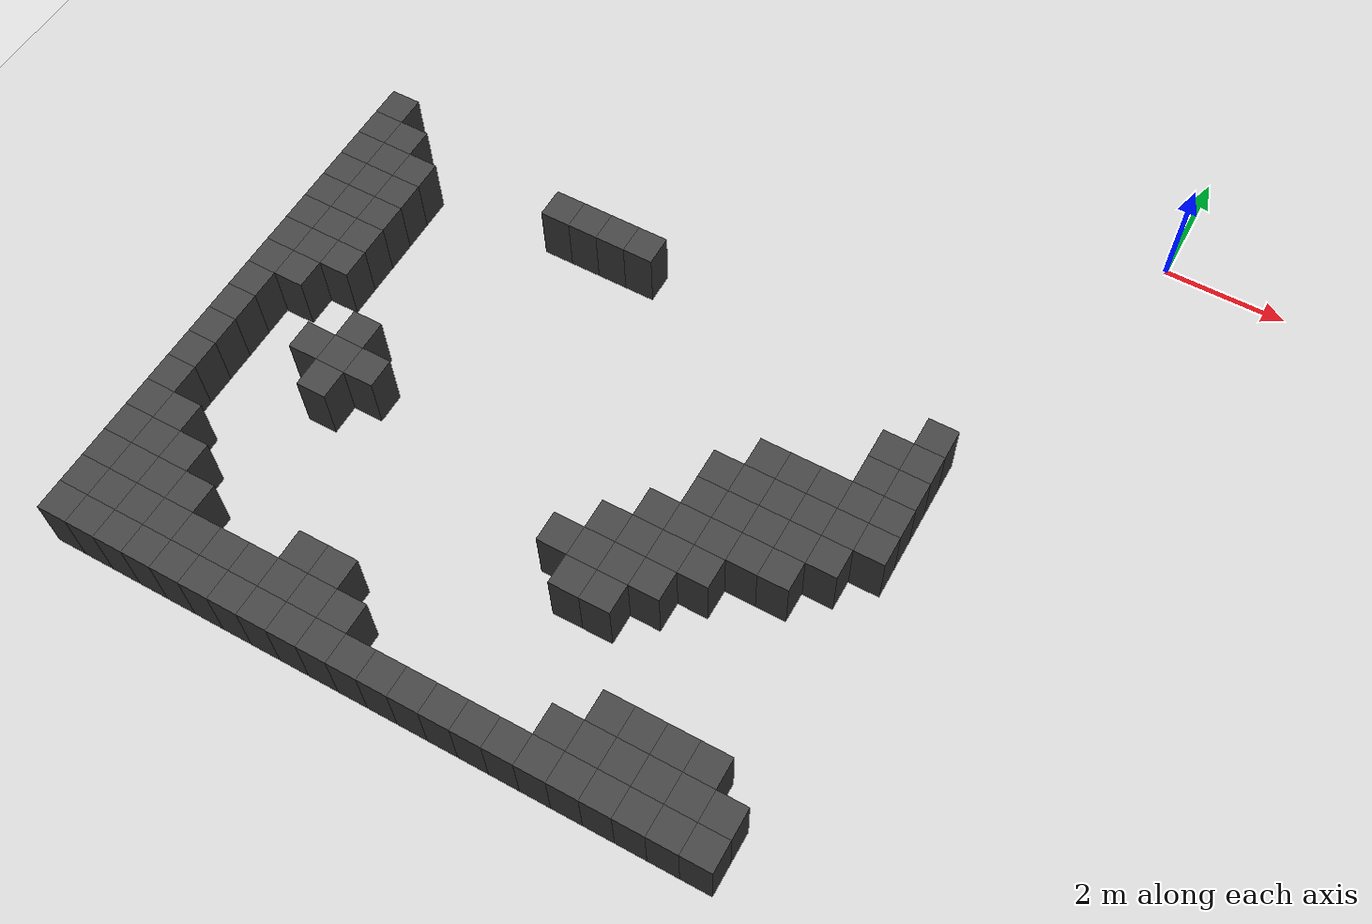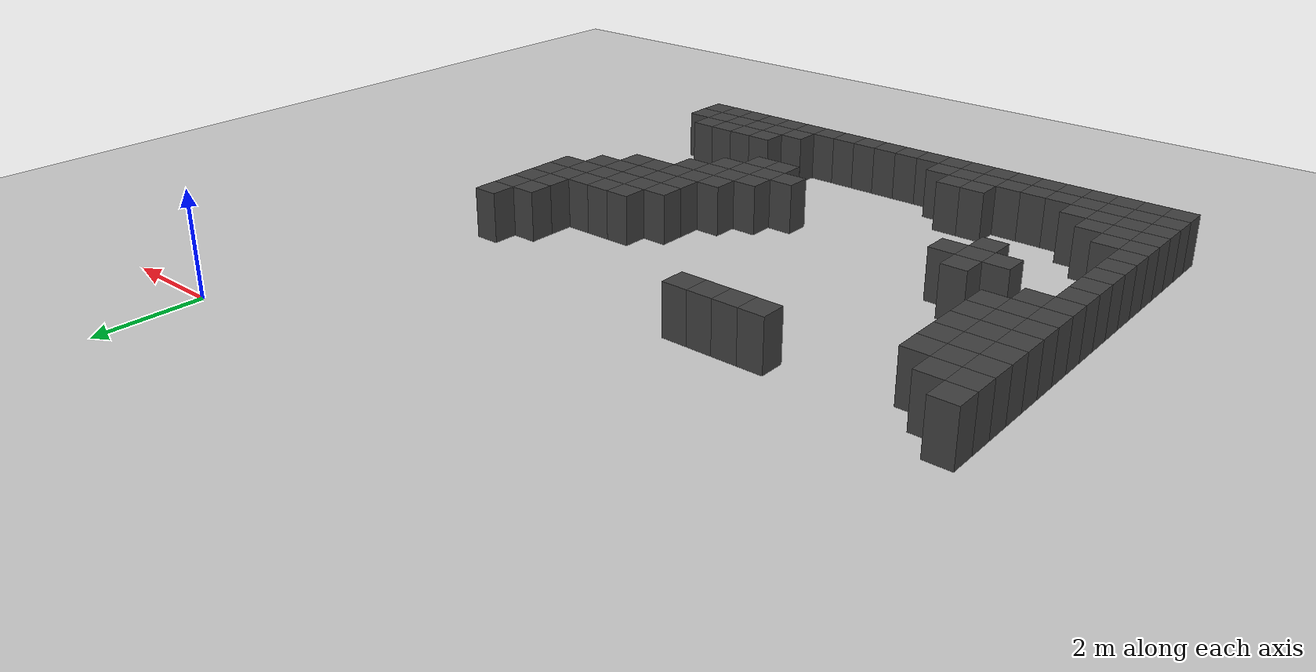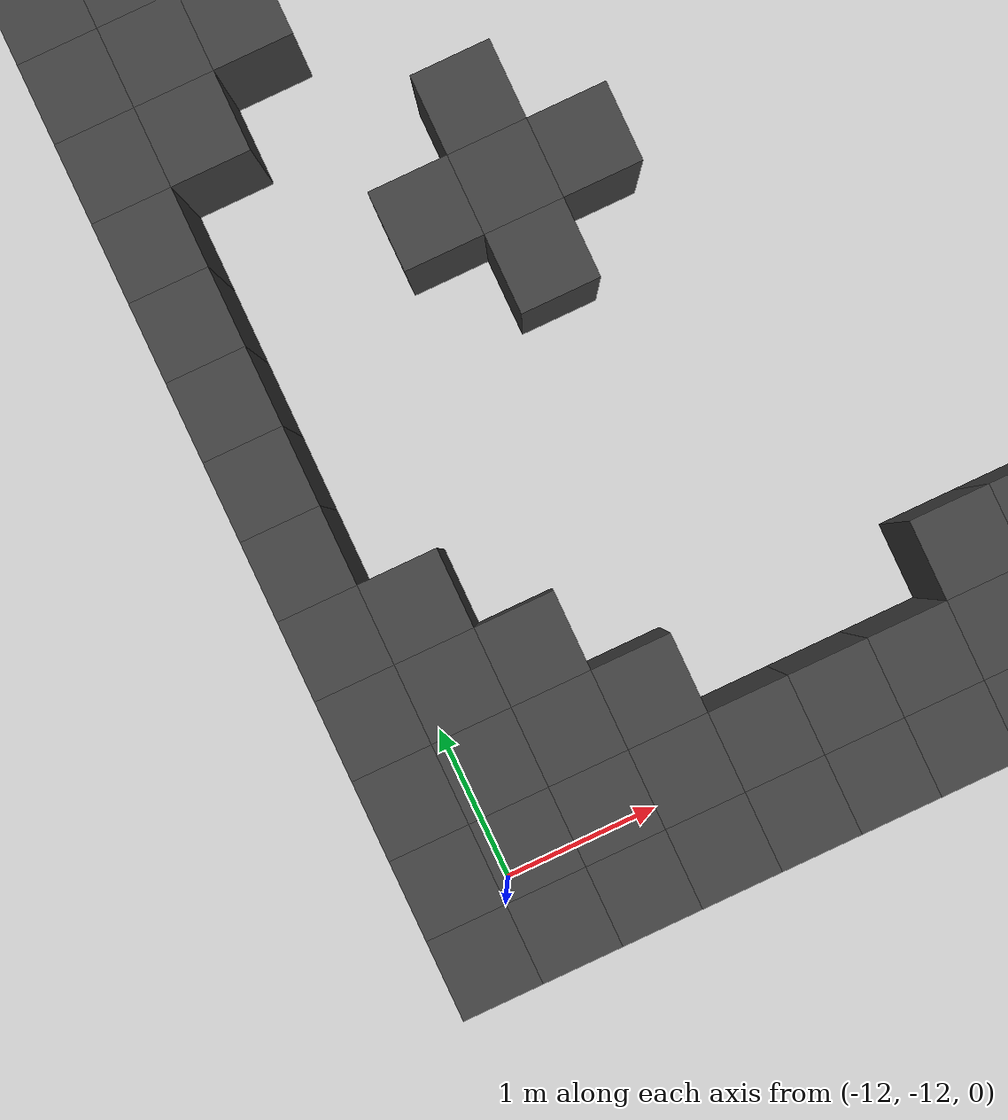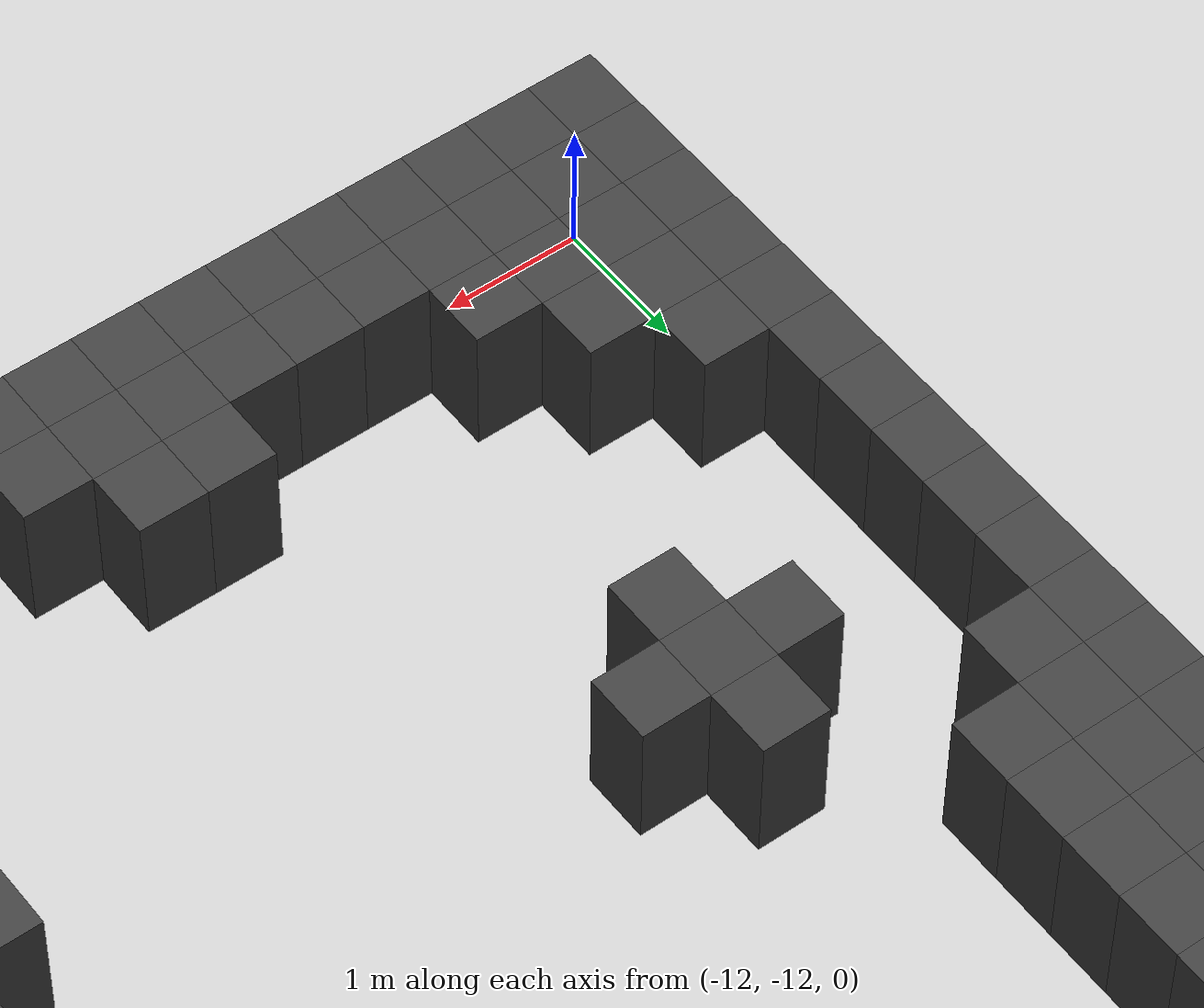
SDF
<sdf version="1.7">
 <world name="map_7972">
  <model name="ground_plane">
   <static>true</static>
   <link name="link">
    <collision name="collision">
     <geometry><plane><normal>0 0 1</normal><size>200 200</size></plane></geometry>
    </collision>
    <visual name="visual">
     <geometry><plane><normal>0 0 1</normal><size>200 200</size></plane></geometry>
     <material><ambient>0.8 0.8 0.8 1</ambient><diffuse>0.8 0.8 0.8 1</diffuse></material>
    </visual>
   </link>
  </model>
  <model name="maze_environment">
   <static>true</static>
   <link name="wall_590">
    <pose>-12.250 -3.750 0.500 0 0 0</pose>
    <collision name="col"><geometry><box><size>0.5 0.5 1.0</size></box></geometry></collision>
    <visual name="vis">
     <geometry><box><size>0.5 0.5 1.0</size></box></geometry>
     <material><ambient>0.15 0.15 0.15 1</ambient><diffuse>0.25 0.25 0.25 1</diffuse></material>
    </visual>
   </link>
   <link name="wall_609">
    <pose>-12.250 -4.250 0.500 0 0 0</pose>
    <collision name="col"><geometry><box><size>0.5 0.5 1.0</size></box></geometry></collision>
    <visual name="vis">
     <geometry><box><size>0.5 0.5 1.0</size></box></geometry>
     <material><ambient>0.15 0.15 0.15 1</ambient><diffuse>0.25 0.25 0.25 1</diffuse></material>
    </visual>
   </link>
   <link name="wall_610">
    <pose>-11.750 -4.250 0.500 0 0 0</pose>
    <collision name="col"><geometry><box><size>0.5 0.5 1.0</size></box></geometry></collision>
    <visual name="vis">
     <geometry><box><size>0.5 0.5 1.0</size></box></geometry>
     <material><ambient>0.15 0.15 0.15 1</ambient><diffuse>0.25 0.25 0.25 1</diffuse></material>
    </visual>
   </link>
   <link name="wall_611">
    <pose>-8.750 -4.250 0.500 0 0 0</pose>
    <collision name="col"><geometry><box><size>0.5 0.5 1.0</size></box></geometry></collision>
    <visual name="vis">
     <geometry><box><size>0.5 0.5 1.0</size></box></geometry>
     <material><ambient>0.15 0.15 0.15 1</ambient><diffuse>0.25 0.25 0.25 1</diffuse></material>
    </visual>
   </link>
   <link name="wall_612">
    <pose>-8.250 -4.250 0.500 0 0 0</pose>
    <collision name="col"><geometry><box><size>0.5 0.5 1.0</size></box></geometry></collision>
    <visual name="vis">
     <geometry><box><size>0.5 0.5 1.0</size></box></geometry>
     <material><ambient>0.15 0.15 0.15 1</ambient><diffuse>0.25 0.25 0.25 1</diffuse></material>
    </visual>
   </link>
   <link name="wall_613">
    <pose>-7.750 -4.250 0.500 0 0 0</pose>
    <collision name="col"><geometry><box><size>0.5 0.5 1.0</size></box></geometry></collision>
    <visual name="vis">
     <geometry><box><size>0.5 0.5 1.0</size></box></geometry>
     <material><ambient>0.15 0.15 0.15 1</ambient><diffuse>0.25 0.25 0.25 1</diffuse></material>
    </visual>
   </link>
   <link name="wall_614">
    <pose>-7.250 -4.250 0.500 0 0 0</pose>
    <collision name="col"><geometry><box><size>0.5 0.5 1.0</size></box></geometry></collision>
    <visual name="vis">
     <geometry><box><size>0.5 0.5 1.0</size></box></geometry>
     <material><ambient>0.15 0.15 0.15 1</ambient><diffuse>0.25 0.25 0.25 1</diffuse></material>
    </visual>
   </link>
   <link name="wall_624">
    <pose>-12.250 -4.750 0.500 0 0 0</pose>
    <collision name="col"><geometry><box><size>0.5 0.5 1.0</size></box></geometry></collision>
    <visual name="vis">
     <geometry><box><size>0.5 0.5 1.0</size></box></geometry>
     <material><ambient>0.15 0.15 0.15 1</ambient><diffuse>0.25 0.25 0.25 1</diffuse></material>
    </visual>
   </link>
   <link name="wall_625">
    <pose>-11.750 -4.750 0.500 0 0 0</pose>
    <collision name="col"><geometry><box><size>0.5 0.5 1.0</size></box></geometry></collision>
    <visual name="vis">
     <geometry><box><size>0.5 0.5 1.0</size></box></geometry>
     <material><ambient>0.15 0.15 0.15 1</ambient><diffuse>0.25 0.25 0.25 1</diffuse></material>
    </visual>
   </link>
   <link name="wall_626">
    <pose>-11.250 -4.750 0.500 0 0 0</pose>
    <collision name="col"><geometry><box><size>0.5 0.5 1.0</size></box></geometry></collision>
    <visual name="vis">
     <geometry><box><size>0.5 0.5 1.0</size></box></geometry>
     <material><ambient>0.15 0.15 0.15 1</ambient><diffuse>0.25 0.25 0.25 1</diffuse></material>
    </visual>
   </link>
   <link name="wall_639">
    <pose>-12.250 -5.250 0.500 0 0 0</pose>
    <collision name="col"><geometry><box><size>0.5 0.5 1.0</size></box></geometry></collision>
    <visual name="vis">
     <geometry><box><size>0.5 0.5 1.0</size></box></geometry>
     <material><ambient>0.15 0.15 0.15 1</ambient><diffuse>0.25 0.25 0.25 1</diffuse></material>
    </visual>
   </link>
   <link name="wall_640">
    <pose>-11.750 -5.250 0.500 0 0 0</pose>
    <collision name="col"><geometry><box><size>0.5 0.5 1.0</size></box></geometry></collision>
    <visual name="vis">
     <geometry><box><size>0.5 0.5 1.0</size></box></geometry>
     <material><ambient>0.15 0.15 0.15 1</ambient><diffuse>0.25 0.25 0.25 1</diffuse></material>
    </visual>
   </link>
   <link name="wall_641">
    <pose>-11.250 -5.250 0.500 0 0 0</pose>
    <collision name="col"><geometry><box><size>0.5 0.5 1.0</size></box></geometry></collision>
    <visual name="vis">
     <geometry><box><size>0.5 0.5 1.0</size></box></geometry>
     <material><ambient>0.15 0.15 0.15 1</ambient><diffuse>0.25 0.25 0.25 1</diffuse></material>
    </visual>
   </link>
   <link name="wall_642">
    <pose>-1.750 -5.250 0.500 0 0 0</pose>
    <collision name="col"><geometry><box><size>0.5 0.5 1.0</size></box></geometry></collision>
    <visual name="vis">
     <geometry><box><size>0.5 0.5 1.0</size></box></geometry>
     <material><ambient>0.15 0.15 0.15 1</ambient><diffuse>0.25 0.25 0.25 1</diffuse></material>
    </visual>
   </link>
   <link name="wall_658">
    <pose>-12.250 -5.750 0.500 0 0 0</pose>
    <collision name="col"><geometry><box><size>0.5 0.5 1.0</size></box></geometry></collision>
    <visual name="vis">
     <geometry><box><size>0.5 0.5 1.0</size></box></geometry>
     <material><ambient>0.15 0.15 0.15 1</ambient><diffuse>0.25 0.25 0.25 1</diffuse></material>
    </visual>
   </link>
   <link name="wall_659">
    <pose>-11.750 -5.750 0.500 0 0 0</pose>
    <collision name="col"><geometry><box><size>0.5 0.5 1.0</size></box></geometry></collision>
    <visual name="vis">
     <geometry><box><size>0.5 0.5 1.0</size></box></geometry>
     <material><ambient>0.15 0.15 0.15 1</ambient><diffuse>0.25 0.25 0.25 1</diffuse></material>
    </visual>
   </link>
   <link name="wall_660">
    <pose>-11.250 -5.750 0.500 0 0 0</pose>
    <collision name="col"><geometry><box><size>0.5 0.5 1.0</size></box></geometry></collision>
    <visual name="vis">
     <geometry><box><size>0.5 0.5 1.0</size></box></geometry>
     <material><ambient>0.15 0.15 0.15 1</ambient><diffuse>0.25 0.25 0.25 1</diffuse></material>
    </visual>
   </link>
   <link name="wall_661">
    <pose>-2.250 -5.750 0.500 0 0 0</pose>
    <collision name="col"><geometry><box><size>0.5 0.5 1.0</size></box></geometry></collision>
    <visual name="vis">
     <geometry><box><size>0.5 0.5 1.0</size></box></geometry>
     <material><ambient>0.15 0.15 0.15 1</ambient><diffuse>0.25 0.25 0.25 1</diffuse></material>
    </visual>
   </link>
   <link name="wall_662">
    <pose>-1.750 -5.750 0.500 0 0 0</pose>
    <collision name="col"><geometry><box><size>0.5 0.5 1.0</size></box></geometry></collision>
    <visual name="vis">
     <geometry><box><size>0.5 0.5 1.0</size></box></geometry>
     <material><ambient>0.15 0.15 0.15 1</ambient><diffuse>0.25 0.25 0.25 1</diffuse></material>
    </visual>
   </link>
   <link name="wall_677">
    <pose>-12.250 -6.250 0.500 0 0 0</pose>
    <collision name="col"><geometry><box><size>0.5 0.5 1.0</size></box></geometry></collision>
    <visual name="vis">
     <geometry><box><size>0.5 0.5 1.0</size></box></geometry>
     <material><ambient>0.15 0.15 0.15 1</ambient><diffuse>0.25 0.25 0.25 1</diffuse></material>
    </visual>
   </link>
   <link name="wall_678">
    <pose>-11.750 -6.250 0.500 0 0 0</pose>
    <collision name="col"><geometry><box><size>0.5 0.5 1.0</size></box></geometry></collision>
    <visual name="vis">
     <geometry><box><size>0.5 0.5 1.0</size></box></geometry>
     <material><ambient>0.15 0.15 0.15 1</ambient><diffuse>0.25 0.25 0.25 1</diffuse></material>
    </visual>
   </link>
   <link name="wall_679">
    <pose>-11.250 -6.250 0.500 0 0 0</pose>
    <collision name="col"><geometry><box><size>0.5 0.5 1.0</size></box></geometry></collision>
    <visual name="vis">
     <geometry><box><size>0.5 0.5 1.0</size></box></geometry>
     <material><ambient>0.15 0.15 0.15 1</ambient><diffuse>0.25 0.25 0.25 1</diffuse></material>
    </visual>
   </link>
   <link name="wall_680">
    <pose>-2.250 -6.250 0.500 0 0 0</pose>
    <collision name="col"><geometry><box><size>0.5 0.5 1.0</size></box></geometry></collision>
    <visual name="vis">
     <geometry><box><size>0.5 0.5 1.0</size></box></geometry>
     <material><ambient>0.15 0.15 0.15 1</ambient><diffuse>0.25 0.25 0.25 1</diffuse></material>
    </visual>
   </link>
   <link name="wall_681">
    <pose>-1.750 -6.250 0.500 0 0 0</pose>
    <collision name="col"><geometry><box><size>0.5 0.5 1.0</size></box></geometry></collision>
    <visual name="vis">
     <geometry><box><size>0.5 0.5 1.0</size></box></geometry>
     <material><ambient>0.15 0.15 0.15 1</ambient><diffuse>0.25 0.25 0.25 1</diffuse></material>
    </visual>
   </link>
   <link name="wall_695">
    <pose>-12.250 -6.750 0.500 0 0 0</pose>
    <collision name="col"><geometry><box><size>0.5 0.5 1.0</size></box></geometry></collision>
    <visual name="vis">
     <geometry><box><size>0.5 0.5 1.0</size></box></geometry>
     <material><ambient>0.15 0.15 0.15 1</ambient><diffuse>0.25 0.25 0.25 1</diffuse></material>
    </visual>
   </link>
   <link name="wall_696">
    <pose>-11.750 -6.750 0.500 0 0 0</pose>
    <collision name="col"><geometry><box><size>0.5 0.5 1.0</size></box></geometry></collision>
    <visual name="vis">
     <geometry><box><size>0.5 0.5 1.0</size></box></geometry>
     <material><ambient>0.15 0.15 0.15 1</ambient><diffuse>0.25 0.25 0.25 1</diffuse></material>
    </visual>
   </link>
   <link name="wall_697">
    <pose>-11.250 -6.750 0.500 0 0 0</pose>
    <collision name="col"><geometry><box><size>0.5 0.5 1.0</size></box></geometry></collision>
    <visual name="vis">
     <geometry><box><size>0.5 0.5 1.0</size></box></geometry>
     <material><ambient>0.15 0.15 0.15 1</ambient><diffuse>0.25 0.25 0.25 1</diffuse></material>
    </visual>
   </link>
   <link name="wall_698">
    <pose>-3.750 -6.750 0.500 0 0 0</pose>
    <collision name="col"><geometry><box><size>0.5 0.5 1.0</size></box></geometry></collision>
    <visual name="vis">
     <geometry><box><size>0.5 0.5 1.0</size></box></geometry>
     <material><ambient>0.15 0.15 0.15 1</ambient><diffuse>0.25 0.25 0.25 1</diffuse></material>
    </visual>
   </link>
   <link name="wall_699">
    <pose>-3.250 -6.750 0.500 0 0 0</pose>
    <collision name="col"><geometry><box><size>0.5 0.5 1.0</size></box></geometry></collision>
    <visual name="vis">
     <geometry><box><size>0.5 0.5 1.0</size></box></geometry>
     <material><ambient>0.15 0.15 0.15 1</ambient><diffuse>0.25 0.25 0.25 1</diffuse></material>
    </visual>
   </link>
   <link name="wall_700">
    <pose>-2.750 -6.750 0.500 0 0 0</pose>
    <collision name="col"><geometry><box><size>0.5 0.5 1.0</size></box></geometry></collision>
    <visual name="vis">
     <geometry><box><size>0.5 0.5 1.0</size></box></geometry>
     <material><ambient>0.15 0.15 0.15 1</ambient><diffuse>0.25 0.25 0.25 1</diffuse></material>
    </visual>
   </link>
   <link name="wall_701">
    <pose>-2.250 -6.750 0.500 0 0 0</pose>
    <collision name="col"><geometry><box><size>0.5 0.5 1.0</size></box></geometry></collision>
    <visual name="vis">
     <geometry><box><size>0.5 0.5 1.0</size></box></geometry>
     <material><ambient>0.15 0.15 0.15 1</ambient><diffuse>0.25 0.25 0.25 1</diffuse></material>
    </visual>
   </link>
   <link name="wall_702">
    <pose>-1.750 -6.750 0.500 0 0 0</pose>
    <collision name="col"><geometry><box><size>0.5 0.5 1.0</size></box></geometry></collision>
    <visual name="vis">
     <geometry><box><size>0.5 0.5 1.0</size></box></geometry>
     <material><ambient>0.15 0.15 0.15 1</ambient><diffuse>0.25 0.25 0.25 1</diffuse></material>
    </visual>
   </link>
   <link name="wall_713">
    <pose>-12.250 -7.250 0.500 0 0 0</pose>
    <collision name="col"><geometry><box><size>0.5 0.5 1.0</size></box></geometry></collision>
    <visual name="vis">
     <geometry><box><size>0.5 0.5 1.0</size></box></geometry>
     <material><ambient>0.15 0.15 0.15 1</ambient><diffuse>0.25 0.25 0.25 1</diffuse></material>
    </visual>
   </link>
   <link name="wall_714">
    <pose>-11.750 -7.250 0.500 0 0 0</pose>
    <collision name="col"><geometry><box><size>0.5 0.5 1.0</size></box></geometry></collision>
    <visual name="vis">
     <geometry><box><size>0.5 0.5 1.0</size></box></geometry>
     <material><ambient>0.15 0.15 0.15 1</ambient><diffuse>0.25 0.25 0.25 1</diffuse></material>
    </visual>
   </link>
   <link name="wall_715">
    <pose>-4.250 -7.250 0.500 0 0 0</pose>
    <collision name="col"><geometry><box><size>0.5 0.5 1.0</size></box></geometry></collision>
    <visual name="vis">
     <geometry><box><size>0.5 0.5 1.0</size></box></geometry>
     <material><ambient>0.15 0.15 0.15 1</ambient><diffuse>0.25 0.25 0.25 1</diffuse></material>
    </visual>
   </link>
   <link name="wall_716">
    <pose>-3.750 -7.250 0.500 0 0 0</pose>
    <collision name="col"><geometry><box><size>0.5 0.5 1.0</size></box></geometry></collision>
    <visual name="vis">
     <geometry><box><size>0.5 0.5 1.0</size></box></geometry>
     <material><ambient>0.15 0.15 0.15 1</ambient><diffuse>0.25 0.25 0.25 1</diffuse></material>
    </visual>
   </link>
   <link name="wall_717">
    <pose>-3.250 -7.250 0.500 0 0 0</pose>
    <collision name="col"><geometry><box><size>0.5 0.5 1.0</size></box></geometry></collision>
    <visual name="vis">
     <geometry><box><size>0.5 0.5 1.0</size></box></geometry>
     <material><ambient>0.15 0.15 0.15 1</ambient><diffuse>0.25 0.25 0.25 1</diffuse></material>
    </visual>
   </link>
   <link name="wall_718">
    <pose>-2.750 -7.250 0.500 0 0 0</pose>
    <collision name="col"><geometry><box><size>0.5 0.5 1.0</size></box></geometry></collision>
    <visual name="vis">
     <geometry><box><size>0.5 0.5 1.0</size></box></geometry>
     <material><ambient>0.15 0.15 0.15 1</ambient><diffuse>0.25 0.25 0.25 1</diffuse></material>
    </visual>
   </link>
   <link name="wall_719">
    <pose>-2.250 -7.250 0.500 0 0 0</pose>
    <collision name="col"><geometry><box><size>0.5 0.5 1.0</size></box></geometry></collision>
    <visual name="vis">
     <geometry><box><size>0.5 0.5 1.0</size></box></geometry>
     <material><ambient>0.15 0.15 0.15 1</ambient><diffuse>0.25 0.25 0.25 1</diffuse></material>
    </visual>
   </link>
   <link name="wall_720">
    <pose>-1.750 -7.250 0.500 0 0 0</pose>
    <collision name="col"><geometry><box><size>0.5 0.5 1.0</size></box></geometry></collision>
    <visual name="vis">
     <geometry><box><size>0.5 0.5 1.0</size></box></geometry>
     <material><ambient>0.15 0.15 0.15 1</ambient><diffuse>0.25 0.25 0.25 1</diffuse></material>
    </visual>
   </link>
   <link name="wall_726">
    <pose>-12.250 -7.750 0.500 0 0 0</pose>
    <collision name="col"><geometry><box><size>0.5 0.5 1.0</size></box></geometry></collision>
    <visual name="vis">
     <geometry><box><size>0.5 0.5 1.0</size></box></geometry>
     <material><ambient>0.15 0.15 0.15 1</ambient><diffuse>0.25 0.25 0.25 1</diffuse></material>
    </visual>
   </link>
   <link name="wall_727">
    <pose>-10.250 -7.750 0.500 0 0 0</pose>
    <collision name="col"><geometry><box><size>0.5 0.5 1.0</size></box></geometry></collision>
    <visual name="vis">
     <geometry><box><size>0.5 0.5 1.0</size></box></geometry>
     <material><ambient>0.15 0.15 0.15 1</ambient><diffuse>0.25 0.25 0.25 1</diffuse></material>
    </visual>
   </link>
   <link name="wall_728">
    <pose>-4.250 -7.750 0.500 0 0 0</pose>
    <collision name="col"><geometry><box><size>0.5 0.5 1.0</size></box></geometry></collision>
    <visual name="vis">
     <geometry><box><size>0.5 0.5 1.0</size></box></geometry>
     <material><ambient>0.15 0.15 0.15 1</ambient><diffuse>0.25 0.25 0.25 1</diffuse></material>
    </visual>
   </link>
   <link name="wall_729">
    <pose>-3.750 -7.750 0.500 0 0 0</pose>
    <collision name="col"><geometry><box><size>0.5 0.5 1.0</size></box></geometry></collision>
    <visual name="vis">
     <geometry><box><size>0.5 0.5 1.0</size></box></geometry>
     <material><ambient>0.15 0.15 0.15 1</ambient><diffuse>0.25 0.25 0.25 1</diffuse></material>
    </visual>
   </link>
   <link name="wall_730">
    <pose>-3.250 -7.750 0.500 0 0 0</pose>
    <collision name="col"><geometry><box><size>0.5 0.5 1.0</size></box></geometry></collision>
    <visual name="vis">
     <geometry><box><size>0.5 0.5 1.0</size></box></geometry>
     <material><ambient>0.15 0.15 0.15 1</ambient><diffuse>0.25 0.25 0.25 1</diffuse></material>
    </visual>
   </link>
   <link name="wall_731">
    <pose>-2.750 -7.750 0.500 0 0 0</pose>
    <collision name="col"><geometry><box><size>0.5 0.5 1.0</size></box></geometry></collision>
    <visual name="vis">
     <geometry><box><size>0.5 0.5 1.0</size></box></geometry>
     <material><ambient>0.15 0.15 0.15 1</ambient><diffuse>0.25 0.25 0.25 1</diffuse></material>
    </visual>
   </link>
   <link name="wall_732">
    <pose>-2.250 -7.750 0.500 0 0 0</pose>
    <collision name="col"><geometry><box><size>0.5 0.5 1.0</size></box></geometry></collision>
    <visual name="vis">
     <geometry><box><size>0.5 0.5 1.0</size></box></geometry>
     <material><ambient>0.15 0.15 0.15 1</ambient><diffuse>0.25 0.25 0.25 1</diffuse></material>
    </visual>
   </link>
   <link name="wall_736">
    <pose>-12.250 -8.250 0.500 0 0 0</pose>
    <collision name="col"><geometry><box><size>0.5 0.5 1.0</size></box></geometry></collision>
    <visual name="vis">
     <geometry><box><size>0.5 0.5 1.0</size></box></geometry>
     <material><ambient>0.15 0.15 0.15 1</ambient><diffuse>0.25 0.25 0.25 1</diffuse></material>
    </visual>
   </link>
   <link name="wall_737">
    <pose>-10.750 -8.250 0.500 0 0 0</pose>
    <collision name="col"><geometry><box><size>0.5 0.5 1.0</size></box></geometry></collision>
    <visual name="vis">
     <geometry><box><size>0.5 0.5 1.0</size></box></geometry>
     <material><ambient>0.15 0.15 0.15 1</ambient><diffuse>0.25 0.25 0.25 1</diffuse></material>
    </visual>
   </link>
   <link name="wall_738">
    <pose>-10.250 -8.250 0.500 0 0 0</pose>
    <collision name="col"><geometry><box><size>0.5 0.5 1.0</size></box></geometry></collision>
    <visual name="vis">
     <geometry><box><size>0.5 0.5 1.0</size></box></geometry>
     <material><ambient>0.15 0.15 0.15 1</ambient><diffuse>0.25 0.25 0.25 1</diffuse></material>
    </visual>
   </link>
   <link name="wall_739">
    <pose>-9.750 -8.250 0.500 0 0 0</pose>
    <collision name="col"><geometry><box><size>0.5 0.5 1.0</size></box></geometry></collision>
    <visual name="vis">
     <geometry><box><size>0.5 0.5 1.0</size></box></geometry>
     <material><ambient>0.15 0.15 0.15 1</ambient><diffuse>0.25 0.25 0.25 1</diffuse></material>
    </visual>
   </link>
   <link name="wall_740">
    <pose>-4.750 -8.250 0.500 0 0 0</pose>
    <collision name="col"><geometry><box><size>0.5 0.5 1.0</size></box></geometry></collision>
    <visual name="vis">
     <geometry><box><size>0.5 0.5 1.0</size></box></geometry>
     <material><ambient>0.15 0.15 0.15 1</ambient><diffuse>0.25 0.25 0.25 1</diffuse></material>
    </visual>
   </link>
   <link name="wall_741">
    <pose>-4.250 -8.250 0.500 0 0 0</pose>
    <collision name="col"><geometry><box><size>0.5 0.5 1.0</size></box></geometry></collision>
    <visual name="vis">
     <geometry><box><size>0.5 0.5 1.0</size></box></geometry>
     <material><ambient>0.15 0.15 0.15 1</ambient><diffuse>0.25 0.25 0.25 1</diffuse></material>
    </visual>
   </link>
   <link name="wall_742">
    <pose>-3.750 -8.250 0.500 0 0 0</pose>
    <collision name="col"><geometry><box><size>0.5 0.5 1.0</size></box></geometry></collision>
    <visual name="vis">
     <geometry><box><size>0.5 0.5 1.0</size></box></geometry>
     <material><ambient>0.15 0.15 0.15 1</ambient><diffuse>0.25 0.25 0.25 1</diffuse></material>
    </visual>
   </link>
   <link name="wall_743">
    <pose>-3.250 -8.250 0.500 0 0 0</pose>
    <collision name="col"><geometry><box><size>0.5 0.5 1.0</size></box></geometry></collision>
    <visual name="vis">
     <geometry><box><size>0.5 0.5 1.0</size></box></geometry>
     <material><ambient>0.15 0.15 0.15 1</ambient><diffuse>0.25 0.25 0.25 1</diffuse></material>
    </visual>
   </link>
   <link name="wall_744">
    <pose>-2.750 -8.250 0.500 0 0 0</pose>
    <collision name="col"><geometry><box><size>0.5 0.5 1.0</size></box></geometry></collision>
    <visual name="vis">
     <geometry><box><size>0.5 0.5 1.0</size></box></geometry>
     <material><ambient>0.15 0.15 0.15 1</ambient><diffuse>0.25 0.25 0.25 1</diffuse></material>
    </visual>
   </link>
   <link name="wall_747">
    <pose>-12.250 -8.750 0.500 0 0 0</pose>
    <collision name="col"><geometry><box><size>0.5 0.5 1.0</size></box></geometry></collision>
    <visual name="vis">
     <geometry><box><size>0.5 0.5 1.0</size></box></geometry>
     <material><ambient>0.15 0.15 0.15 1</ambient><diffuse>0.25 0.25 0.25 1</diffuse></material>
    </visual>
   </link>
   <link name="wall_748">
    <pose>-10.250 -8.750 0.500 0 0 0</pose>
    <collision name="col"><geometry><box><size>0.5 0.5 1.0</size></box></geometry></collision>
    <visual name="vis">
     <geometry><box><size>0.5 0.5 1.0</size></box></geometry>
     <material><ambient>0.15 0.15 0.15 1</ambient><diffuse>0.25 0.25 0.25 1</diffuse></material>
    </visual>
   </link>
   <link name="wall_749">
    <pose>-5.250 -8.750 0.500 0 0 0</pose>
    <collision name="col"><geometry><box><size>0.5 0.5 1.0</size></box></geometry></collision>
    <visual name="vis">
     <geometry><box><size>0.5 0.5 1.0</size></box></geometry>
     <material><ambient>0.15 0.15 0.15 1</ambient><diffuse>0.25 0.25 0.25 1</diffuse></material>
    </visual>
   </link>
   <link name="wall_750">
    <pose>-4.750 -8.750 0.500 0 0 0</pose>
    <collision name="col"><geometry><box><size>0.5 0.5 1.0</size></box></geometry></collision>
    <visual name="vis">
     <geometry><box><size>0.5 0.5 1.0</size></box></geometry>
     <material><ambient>0.15 0.15 0.15 1</ambient><diffuse>0.25 0.25 0.25 1</diffuse></material>
    </visual>
   </link>
   <link name="wall_751">
    <pose>-4.250 -8.750 0.500 0 0 0</pose>
    <collision name="col"><geometry><box><size>0.5 0.5 1.0</size></box></geometry></collision>
    <visual name="vis">
     <geometry><box><size>0.5 0.5 1.0</size></box></geometry>
     <material><ambient>0.15 0.15 0.15 1</ambient><diffuse>0.25 0.25 0.25 1</diffuse></material>
    </visual>
   </link>
   <link name="wall_752">
    <pose>-3.750 -8.750 0.500 0 0 0</pose>
    <collision name="col"><geometry><box><size>0.5 0.5 1.0</size></box></geometry></collision>
    <visual name="vis">
     <geometry><box><size>0.5 0.5 1.0</size></box></geometry>
     <material><ambient>0.15 0.15 0.15 1</ambient><diffuse>0.25 0.25 0.25 1</diffuse></material>
    </visual>
   </link>
   <link name="wall_755">
    <pose>-12.250 -9.250 0.500 0 0 0</pose>
    <collision name="col"><geometry><box><size>0.5 0.5 1.0</size></box></geometry></collision>
    <visual name="vis">
     <geometry><box><size>0.5 0.5 1.0</size></box></geometry>
     <material><ambient>0.15 0.15 0.15 1</ambient><diffuse>0.25 0.25 0.25 1</diffuse></material>
    </visual>
   </link>
   <link name="wall_756">
    <pose>-5.750 -9.250 0.500 0 0 0</pose>
    <collision name="col"><geometry><box><size>0.5 0.5 1.0</size></box></geometry></collision>
    <visual name="vis">
     <geometry><box><size>0.5 0.5 1.0</size></box></geometry>
     <material><ambient>0.15 0.15 0.15 1</ambient><diffuse>0.25 0.25 0.25 1</diffuse></material>
    </visual>
   </link>
   <link name="wall_757">
    <pose>-5.250 -9.250 0.500 0 0 0</pose>
    <collision name="col"><geometry><box><size>0.5 0.5 1.0</size></box></geometry></collision>
    <visual name="vis">
     <geometry><box><size>0.5 0.5 1.0</size></box></geometry>
     <material><ambient>0.15 0.15 0.15 1</ambient><diffuse>0.25 0.25 0.25 1</diffuse></material>
    </visual>
   </link>
   <link name="wall_758">
    <pose>-4.750 -9.250 0.500 0 0 0</pose>
    <collision name="col"><geometry><box><size>0.5 0.5 1.0</size></box></geometry></collision>
    <visual name="vis">
     <geometry><box><size>0.5 0.5 1.0</size></box></geometry>
     <material><ambient>0.15 0.15 0.15 1</ambient><diffuse>0.25 0.25 0.25 1</diffuse></material>
    </visual>
   </link>
   <link name="wall_759">
    <pose>-4.250 -9.250 0.500 0 0 0</pose>
    <collision name="col"><geometry><box><size>0.5 0.5 1.0</size></box></geometry></collision>
    <visual name="vis">
     <geometry><box><size>0.5 0.5 1.0</size></box></geometry>
     <material><ambient>0.15 0.15 0.15 1</ambient><diffuse>0.25 0.25 0.25 1</diffuse></material>
    </visual>
   </link>
   <link name="wall_762">
    <pose>-12.250 -9.750 0.500 0 0 0</pose>
    <collision name="col"><geometry><box><size>0.5 0.5 1.0</size></box></geometry></collision>
    <visual name="vis">
     <geometry><box><size>0.5 0.5 1.0</size></box></geometry>
     <material><ambient>0.15 0.15 0.15 1</ambient><diffuse>0.25 0.25 0.25 1</diffuse></material>
    </visual>
   </link>
   <link name="wall_763">
    <pose>-5.250 -9.750 0.500 0 0 0</pose>
    <collision name="col"><geometry><box><size>0.5 0.5 1.0</size></box></geometry></collision>
    <visual name="vis">
     <geometry><box><size>0.5 0.5 1.0</size></box></geometry>
     <material><ambient>0.15 0.15 0.15 1</ambient><diffuse>0.25 0.25 0.25 1</diffuse></material>
    </visual>
   </link>
   <link name="wall_764">
    <pose>-4.750 -9.750 0.500 0 0 0</pose>
    <collision name="col"><geometry><box><size>0.5 0.5 1.0</size></box></geometry></collision>
    <visual name="vis">
     <geometry><box><size>0.5 0.5 1.0</size></box></geometry>
     <material><ambient>0.15 0.15 0.15 1</ambient><diffuse>0.25 0.25 0.25 1</diffuse></material>
    </visual>
   </link>
   <link name="wall_766">
    <pose>-12.250 -10.250 0.500 0 0 0</pose>
    <collision name="col"><geometry><box><size>0.5 0.5 1.0</size></box></geometry></collision>
    <visual name="vis">
     <geometry><box><size>0.5 0.5 1.0</size></box></geometry>
     <material><ambient>0.15 0.15 0.15 1</ambient><diffuse>0.25 0.25 0.25 1</diffuse></material>
    </visual>
   </link>
   <link name="wall_767">
    <pose>-11.750 -10.250 0.500 0 0 0</pose>
    <collision name="col"><geometry><box><size>0.5 0.5 1.0</size></box></geometry></collision>
    <visual name="vis">
     <geometry><box><size>0.5 0.5 1.0</size></box></geometry>
     <material><ambient>0.15 0.15 0.15 1</ambient><diffuse>0.25 0.25 0.25 1</diffuse></material>
    </visual>
   </link>
   <link name="wall_769">
    <pose>-12.250 -10.750 0.500 0 0 0</pose>
    <collision name="col"><geometry><box><size>0.5 0.5 1.0</size></box></geometry></collision>
    <visual name="vis">
     <geometry><box><size>0.5 0.5 1.0</size></box></geometry>
     <material><ambient>0.15 0.15 0.15 1</ambient><diffuse>0.25 0.25 0.25 1</diffuse></material>
    </visual>
   </link>
   <link name="wall_770">
    <pose>-11.750 -10.750 0.500 0 0 0</pose>
    <collision name="col"><geometry><box><size>0.5 0.5 1.0</size></box></geometry></collision>
    <visual name="vis">
     <geometry><box><size>0.5 0.5 1.0</size></box></geometry>
     <material><ambient>0.15 0.15 0.15 1</ambient><diffuse>0.25 0.25 0.25 1</diffuse></material>
    </visual>
   </link>
   <link name="wall_771">
    <pose>-11.250 -10.750 0.500 0 0 0</pose>
    <collision name="col"><geometry><box><size>0.5 0.5 1.0</size></box></geometry></collision>
    <visual name="vis">
     <geometry><box><size>0.5 0.5 1.0</size></box></geometry>
     <material><ambient>0.15 0.15 0.15 1</ambient><diffuse>0.25 0.25 0.25 1</diffuse></material>
    </visual>
   </link>
   <link name="wall_773">
    <pose>-12.250 -11.250 0.500 0 0 0</pose>
    <collision name="col"><geometry><box><size>0.5 0.5 1.0</size></box></geometry></collision>
    <visual name="vis">
     <geometry><box><size>0.5 0.5 1.0</size></box></geometry>
     <material><ambient>0.15 0.15 0.15 1</ambient><diffuse>0.25 0.25 0.25 1</diffuse></material>
    </visual>
   </link>
   <link name="wall_774">
    <pose>-11.750 -11.250 0.500 0 0 0</pose>
    <collision name="col"><geometry><box><size>0.5 0.5 1.0</size></box></geometry></collision>
    <visual name="vis">
     <geometry><box><size>0.5 0.5 1.0</size></box></geometry>
     <material><ambient>0.15 0.15 0.15 1</ambient><diffuse>0.25 0.25 0.25 1</diffuse></material>
    </visual>
   </link>
   <link name="wall_775">
    <pose>-11.250 -11.250 0.500 0 0 0</pose>
    <collision name="col"><geometry><box><size>0.5 0.5 1.0</size></box></geometry></collision>
    <visual name="vis">
     <geometry><box><size>0.5 0.5 1.0</size></box></geometry>
     <material><ambient>0.15 0.15 0.15 1</ambient><diffuse>0.25 0.25 0.25 1</diffuse></material>
    </visual>
   </link>
   <link name="wall_776">
    <pose>-10.750 -11.250 0.500 0 0 0</pose>
    <collision name="col"><geometry><box><size>0.5 0.5 1.0</size></box></geometry></collision>
    <visual name="vis">
     <geometry><box><size>0.5 0.5 1.0</size></box></geometry>
     <material><ambient>0.15 0.15 0.15 1</ambient><diffuse>0.25 0.25 0.25 1</diffuse></material>
    </visual>
   </link>
   <link name="wall_777">
    <pose>-8.750 -11.250 0.500 0 0 0</pose>
    <collision name="col"><geometry><box><size>0.5 0.5 1.0</size></box></geometry></collision>
    <visual name="vis">
     <geometry><box><size>0.5 0.5 1.0</size></box></geometry>
     <material><ambient>0.15 0.15 0.15 1</ambient><diffuse>0.25 0.25 0.25 1</diffuse></material>
    </visual>
   </link>
   <link name="wall_778">
    <pose>-8.250 -11.250 0.500 0 0 0</pose>
    <collision name="col"><geometry><box><size>0.5 0.5 1.0</size></box></geometry></collision>
    <visual name="vis">
     <geometry><box><size>0.5 0.5 1.0</size></box></geometry>
     <material><ambient>0.15 0.15 0.15 1</ambient><diffuse>0.25 0.25 0.25 1</diffuse></material>
    </visual>
   </link>
   <link name="wall_779">
    <pose>-3.750 -11.250 0.500 0 0 0</pose>
    <collision name="col"><geometry><box><size>0.5 0.5 1.0</size></box></geometry></collision>
    <visual name="vis">
     <geometry><box><size>0.5 0.5 1.0</size></box></geometry>
     <material><ambient>0.15 0.15 0.15 1</ambient><diffuse>0.25 0.25 0.25 1</diffuse></material>
    </visual>
   </link>
   <link name="wall_780">
    <pose>-3.250 -11.250 0.500 0 0 0</pose>
    <collision name="col"><geometry><box><size>0.5 0.5 1.0</size></box></geometry></collision>
    <visual name="vis">
     <geometry><box><size>0.5 0.5 1.0</size></box></geometry>
     <material><ambient>0.15 0.15 0.15 1</ambient><diffuse>0.25 0.25 0.25 1</diffuse></material>
    </visual>
   </link>
   <link name="wall_781">
    <pose>-2.750 -11.250 0.500 0 0 0</pose>
    <collision name="col"><geometry><box><size>0.5 0.5 1.0</size></box></geometry></collision>
    <visual name="vis">
     <geometry><box><size>0.5 0.5 1.0</size></box></geometry>
     <material><ambient>0.15 0.15 0.15 1</ambient><diffuse>0.25 0.25 0.25 1</diffuse></material>
    </visual>
   </link>
   <link name="wall_782">
    <pose>-2.250 -11.250 0.500 0 0 0</pose>
    <collision name="col"><geometry><box><size>0.5 0.5 1.0</size></box></geometry></collision>
    <visual name="vis">
     <geometry><box><size>0.5 0.5 1.0</size></box></geometry>
     <material><ambient>0.15 0.15 0.15 1</ambient><diffuse>0.25 0.25 0.25 1</diffuse></material>
    </visual>
   </link>
   <link name="wall_785">
    <pose>-12.250 -11.750 0.500 0 0 0</pose>
    <collision name="col"><geometry><box><size>0.5 0.5 1.0</size></box></geometry></collision>
    <visual name="vis">
     <geometry><box><size>0.5 0.5 1.0</size></box></geometry>
     <material><ambient>0.15 0.15 0.15 1</ambient><diffuse>0.25 0.25 0.25 1</diffuse></material>
    </visual>
   </link>
   <link name="wall_786">
    <pose>-11.750 -11.750 0.500 0 0 0</pose>
    <collision name="col"><geometry><box><size>0.5 0.5 1.0</size></box></geometry></collision>
    <visual name="vis">
     <geometry><box><size>0.5 0.5 1.0</size></box></geometry>
     <material><ambient>0.15 0.15 0.15 1</ambient><diffuse>0.25 0.25 0.25 1</diffuse></material>
    </visual>
   </link>
   <link name="wall_787">
    <pose>-11.250 -11.750 0.500 0 0 0</pose>
    <collision name="col"><geometry><box><size>0.5 0.5 1.0</size></box></geometry></collision>
    <visual name="vis">
     <geometry><box><size>0.5 0.5 1.0</size></box></geometry>
     <material><ambient>0.15 0.15 0.15 1</ambient><diffuse>0.25 0.25 0.25 1</diffuse></material>
    </visual>
   </link>
   <link name="wall_788">
    <pose>-10.750 -11.750 0.500 0 0 0</pose>
    <collision name="col"><geometry><box><size>0.5 0.5 1.0</size></box></geometry></collision>
    <visual name="vis">
     <geometry><box><size>0.5 0.5 1.0</size></box></geometry>
     <material><ambient>0.15 0.15 0.15 1</ambient><diffuse>0.25 0.25 0.25 1</diffuse></material>
    </visual>
   </link>
   <link name="wall_789">
    <pose>-10.250 -11.750 0.500 0 0 0</pose>
    <collision name="col"><geometry><box><size>0.5 0.5 1.0</size></box></geometry></collision>
    <visual name="vis">
     <geometry><box><size>0.5 0.5 1.0</size></box></geometry>
     <material><ambient>0.15 0.15 0.15 1</ambient><diffuse>0.25 0.25 0.25 1</diffuse></material>
    </visual>
   </link>
   <link name="wall_790">
    <pose>-9.750 -11.750 0.500 0 0 0</pose>
    <collision name="col"><geometry><box><size>0.5 0.5 1.0</size></box></geometry></collision>
    <visual name="vis">
     <geometry><box><size>0.5 0.5 1.0</size></box></geometry>
     <material><ambient>0.15 0.15 0.15 1</ambient><diffuse>0.25 0.25 0.25 1</diffuse></material>
    </visual>
   </link>
   <link name="wall_791">
    <pose>-9.250 -11.750 0.500 0 0 0</pose>
    <collision name="col"><geometry><box><size>0.5 0.5 1.0</size></box></geometry></collision>
    <visual name="vis">
     <geometry><box><size>0.5 0.5 1.0</size></box></geometry>
     <material><ambient>0.15 0.15 0.15 1</ambient><diffuse>0.25 0.25 0.25 1</diffuse></material>
    </visual>
   </link>
   <link name="wall_792">
    <pose>-8.750 -11.750 0.500 0 0 0</pose>
    <collision name="col"><geometry><box><size>0.5 0.5 1.0</size></box></geometry></collision>
    <visual name="vis">
     <geometry><box><size>0.5 0.5 1.0</size></box></geometry>
     <material><ambient>0.15 0.15 0.15 1</ambient><diffuse>0.25 0.25 0.25 1</diffuse></material>
    </visual>
   </link>
   <link name="wall_793">
    <pose>-8.250 -11.750 0.500 0 0 0</pose>
    <collision name="col"><geometry><box><size>0.5 0.5 1.0</size></box></geometry></collision>
    <visual name="vis">
     <geometry><box><size>0.5 0.5 1.0</size></box></geometry>
     <material><ambient>0.15 0.15 0.15 1</ambient><diffuse>0.25 0.25 0.25 1</diffuse></material>
    </visual>
   </link>
   <link name="wall_794">
    <pose>-7.750 -11.750 0.500 0 0 0</pose>
    <collision name="col"><geometry><box><size>0.5 0.5 1.0</size></box></geometry></collision>
    <visual name="vis">
     <geometry><box><size>0.5 0.5 1.0</size></box></geometry>
     <material><ambient>0.15 0.15 0.15 1</ambient><diffuse>0.25 0.25 0.25 1</diffuse></material>
    </visual>
   </link>
   <link name="wall_795">
    <pose>-4.250 -11.750 0.500 0 0 0</pose>
    <collision name="col"><geometry><box><size>0.5 0.5 1.0</size></box></geometry></collision>
    <visual name="vis">
     <geometry><box><size>0.5 0.5 1.0</size></box></geometry>
     <material><ambient>0.15 0.15 0.15 1</ambient><diffuse>0.25 0.25 0.25 1</diffuse></material>
    </visual>
   </link>
   <link name="wall_796">
    <pose>-3.750 -11.750 0.500 0 0 0</pose>
    <collision name="col"><geometry><box><size>0.5 0.5 1.0</size></box></geometry></collision>
    <visual name="vis">
     <geometry><box><size>0.5 0.5 1.0</size></box></geometry>
     <material><ambient>0.15 0.15 0.15 1</ambient><diffuse>0.25 0.25 0.25 1</diffuse></material>
    </visual>
   </link>
   <link name="wall_797">
    <pose>-3.250 -11.750 0.500 0 0 0</pose>
    <collision name="col"><geometry><box><size>0.5 0.5 1.0</size></box></geometry></collision>
    <visual name="vis">
     <geometry><box><size>0.5 0.5 1.0</size></box></geometry>
     <material><ambient>0.15 0.15 0.15 1</ambient><diffuse>0.25 0.25 0.25 1</diffuse></material>
    </visual>
   </link>
   <link name="wall_798">
    <pose>-2.750 -11.750 0.500 0 0 0</pose>
    <collision name="col"><geometry><box><size>0.5 0.5 1.0</size></box></geometry></collision>
    <visual name="vis">
     <geometry><box><size>0.5 0.5 1.0</size></box></geometry>
     <material><ambient>0.15 0.15 0.15 1</ambient><diffuse>0.25 0.25 0.25 1</diffuse></material>
    </visual>
   </link>
   <link name="wall_799">
    <pose>-2.250 -11.750 0.500 0 0 0</pose>
    <collision name="col"><geometry><box><size>0.5 0.5 1.0</size></box></geometry></collision>
    <visual name="vis">
     <geometry><box><size>0.5 0.5 1.0</size></box></geometry>
     <material><ambient>0.15 0.15 0.15 1</ambient><diffuse>0.25 0.25 0.25 1</diffuse></material>
    </visual>
   </link>
   <link name="wall_800">
    <pose>-1.750 -11.750 0.500 0 0 0</pose>
    <collision name="col"><geometry><box><size>0.5 0.5 1.0</size></box></geometry></collision>
    <visual name="vis">
     <geometry><box><size>0.5 0.5 1.0</size></box></geometry>
     <material><ambient>0.15 0.15 0.15 1</ambient><diffuse>0.25 0.25 0.25 1</diffuse></material>
    </visual>
   </link>
   <link name="wall_813">
    <pose>-12.250 -12.250 0.500 0 0 0</pose>
    <collision name="col"><geometry><box><size>0.5 0.5 1.0</size></box></geometry></collision>
    <visual name="vis">
     <geometry><box><size>0.5 0.5 1.0</size></box></geometry>
     <material><ambient>0.15 0.15 0.15 1</ambient><diffuse>0.25 0.25 0.25 1</diffuse></material>
    </visual>
   </link>
   <link name="wall_814">
    <pose>-11.750 -12.250 0.500 0 0 0</pose>
    <collision name="col"><geometry><box><size>0.5 0.5 1.0</size></box></geometry></collision>
    <visual name="vis">
     <geometry><box><size>0.5 0.5 1.0</size></box></geometry>
     <material><ambient>0.15 0.15 0.15 1</ambient><diffuse>0.25 0.25 0.25 1</diffuse></material>
    </visual>
   </link>
   <link name="wall_815">
    <pose>-11.250 -12.250 0.500 0 0 0</pose>
    <collision name="col"><geometry><box><size>0.5 0.5 1.0</size></box></geometry></collision>
    <visual name="vis">
     <geometry><box><size>0.5 0.5 1.0</size></box></geometry>
     <material><ambient>0.15 0.15 0.15 1</ambient><diffuse>0.25 0.25 0.25 1</diffuse></material>
    </visual>
   </link>
   <link name="wall_816">
    <pose>-10.750 -12.250 0.500 0 0 0</pose>
    <collision name="col"><geometry><box><size>0.5 0.5 1.0</size></box></geometry></collision>
    <visual name="vis">
     <geometry><box><size>0.5 0.5 1.0</size></box></geometry>
     <material><ambient>0.15 0.15 0.15 1</ambient><diffuse>0.25 0.25 0.25 1</diffuse></material>
    </visual>
   </link>
   <link name="wall_817">
    <pose>-10.250 -12.250 0.500 0 0 0</pose>
    <collision name="col"><geometry><box><size>0.5 0.5 1.0</size></box></geometry></collision>
    <visual name="vis">
     <geometry><box><size>0.5 0.5 1.0</size></box></geometry>
     <material><ambient>0.15 0.15 0.15 1</ambient><diffuse>0.25 0.25 0.25 1</diffuse></material>
    </visual>
   </link>
   <link name="wall_818">
    <pose>-9.750 -12.250 0.500 0 0 0</pose>
    <collision name="col"><geometry><box><size>0.5 0.5 1.0</size></box></geometry></collision>
    <visual name="vis">
     <geometry><box><size>0.5 0.5 1.0</size></box></geometry>
     <material><ambient>0.15 0.15 0.15 1</ambient><diffuse>0.25 0.25 0.25 1</diffuse></material>
    </visual>
   </link>
   <link name="wall_819">
    <pose>-9.250 -12.250 0.500 0 0 0</pose>
    <collision name="col"><geometry><box><size>0.5 0.5 1.0</size></box></geometry></collision>
    <visual name="vis">
     <geometry><box><size>0.5 0.5 1.0</size></box></geometry>
     <material><ambient>0.15 0.15 0.15 1</ambient><diffuse>0.25 0.25 0.25 1</diffuse></material>
    </visual>
   </link>
   <link name="wall_820">
    <pose>-8.750 -12.250 0.500 0 0 0</pose>
    <collision name="col"><geometry><box><size>0.5 0.5 1.0</size></box></geometry></collision>
    <visual name="vis">
     <geometry><box><size>0.5 0.5 1.0</size></box></geometry>
     <material><ambient>0.15 0.15 0.15 1</ambient><diffuse>0.25 0.25 0.25 1</diffuse></material>
    </visual>
   </link>
   <link name="wall_821">
    <pose>-8.250 -12.250 0.500 0 0 0</pose>
    <collision name="col"><geometry><box><size>0.5 0.5 1.0</size></box></geometry></collision>
    <visual name="vis">
     <geometry><box><size>0.5 0.5 1.0</size></box></geometry>
     <material><ambient>0.15 0.15 0.15 1</ambient><diffuse>0.25 0.25 0.25 1</diffuse></material>
    </visual>
   </link>
   <link name="wall_822">
    <pose>-7.750 -12.250 0.500 0 0 0</pose>
    <collision name="col"><geometry><box><size>0.5 0.5 1.0</size></box></geometry></collision>
    <visual name="vis">
     <geometry><box><size>0.5 0.5 1.0</size></box></geometry>
     <material><ambient>0.15 0.15 0.15 1</ambient><diffuse>0.25 0.25 0.25 1</diffuse></material>
    </visual>
   </link>
   <link name="wall_823">
    <pose>-7.250 -12.250 0.500 0 0 0</pose>
    <collision name="col"><geometry><box><size>0.5 0.5 1.0</size></box></geometry></collision>
    <visual name="vis">
     <geometry><box><size>0.5 0.5 1.0</size></box></geometry>
     <material><ambient>0.15 0.15 0.15 1</ambient><diffuse>0.25 0.25 0.25 1</diffuse></material>
    </visual>
   </link>
   <link name="wall_824">
    <pose>-6.750 -12.250 0.500 0 0 0</pose>
    <collision name="col"><geometry><box><size>0.5 0.5 1.0</size></box></geometry></collision>
    <visual name="vis">
     <geometry><box><size>0.5 0.5 1.0</size></box></geometry>
     <material><ambient>0.15 0.15 0.15 1</ambient><diffuse>0.25 0.25 0.25 1</diffuse></material>
    </visual>
   </link>
   <link name="wall_825">
    <pose>-6.250 -12.250 0.500 0 0 0</pose>
    <collision name="col"><geometry><box><size>0.5 0.5 1.0</size></box></geometry></collision>
    <visual name="vis">
     <geometry><box><size>0.5 0.5 1.0</size></box></geometry>
     <material><ambient>0.15 0.15 0.15 1</ambient><diffuse>0.25 0.25 0.25 1</diffuse></material>
    </visual>
   </link>
   <link name="wall_826">
    <pose>-5.750 -12.250 0.500 0 0 0</pose>
    <collision name="col"><geometry><box><size>0.5 0.5 1.0</size></box></geometry></collision>
    <visual name="vis">
     <geometry><box><size>0.5 0.5 1.0</size></box></geometry>
     <material><ambient>0.15 0.15 0.15 1</ambient><diffuse>0.25 0.25 0.25 1</diffuse></material>
    </visual>
   </link>
   <link name="wall_827">
    <pose>-5.250 -12.250 0.500 0 0 0</pose>
    <collision name="col"><geometry><box><size>0.5 0.5 1.0</size></box></geometry></collision>
    <visual name="vis">
     <geometry><box><size>0.5 0.5 1.0</size></box></geometry>
     <material><ambient>0.15 0.15 0.15 1</ambient><diffuse>0.25 0.25 0.25 1</diffuse></material>
    </visual>
   </link>
   <link name="wall_828">
    <pose>-4.750 -12.250 0.500 0 0 0</pose>
    <collision name="col"><geometry><box><size>0.5 0.5 1.0</size></box></geometry></collision>
    <visual name="vis">
     <geometry><box><size>0.5 0.5 1.0</size></box></geometry>
     <material><ambient>0.15 0.15 0.15 1</ambient><diffuse>0.25 0.25 0.25 1</diffuse></material>
    </visual>
   </link>
   <link name="wall_829">
    <pose>-4.250 -12.250 0.500 0 0 0</pose>
    <collision name="col"><geometry><box><size>0.5 0.5 1.0</size></box></geometry></collision>
    <visual name="vis">
     <geometry><box><size>0.5 0.5 1.0</size></box></geometry>
     <material><ambient>0.15 0.15 0.15 1</ambient><diffuse>0.25 0.25 0.25 1</diffuse></material>
    </visual>
   </link>
   <link name="wall_830">
    <pose>-3.750 -12.250 0.500 0 0 0</pose>
    <collision name="col"><geometry><box><size>0.5 0.5 1.0</size></box></geometry></collision>
    <visual name="vis">
     <geometry><box><size>0.5 0.5 1.0</size></box></geometry>
     <material><ambient>0.15 0.15 0.15 1</ambient><diffuse>0.25 0.25 0.25 1</diffuse></material>
    </visual>
   </link>
   <link name="wall_831">
    <pose>-3.250 -12.250 0.500 0 0 0</pose>
    <collision name="col"><geometry><box><size>0.5 0.5 1.0</size></box></geometry></collision>
    <visual name="vis">
     <geometry><box><size>0.5 0.5 1.0</size></box></geometry>
     <material><ambient>0.15 0.15 0.15 1</ambient><diffuse>0.25 0.25 0.25 1</diffuse></material>
    </visual>
   </link>
   <link name="wall_832">
    <pose>-2.750 -12.250 0.500 0 0 0</pose>
    <collision name="col"><geometry><box><size>0.5 0.5 1.0</size></box></geometry></collision>
    <visual name="vis">
     <geometry><box><size>0.5 0.5 1.0</size></box></geometry>
     <material><ambient>0.15 0.15 0.15 1</ambient><diffuse>0.25 0.25 0.25 1</diffuse></material>
    </visual>
   </link>
   <link name="wall_833">
    <pose>-2.250 -12.250 0.500 0 0 0</pose>
    <collision name="col"><geometry><box><size>0.5 0.5 1.0</size></box></geometry></collision>
    <visual name="vis">
     <geometry><box><size>0.5 0.5 1.0</size></box></geometry>
     <material><ambient>0.15 0.15 0.15 1</ambient><diffuse>0.25 0.25 0.25 1</diffuse></material>
    </visual>
   </link>
   <link name="wall_834">
    <pose>-1.750 -12.250 0.500 0 0 0</pose>
    <collision name="col"><geometry><box><size>0.5 0.5 1.0</size></box></geometry></collision>
    <visual name="vis">
     <geometry><box><size>0.5 0.5 1.0</size></box></geometry>
     <material><ambient>0.15 0.15 0.15 1</ambient><diffuse>0.25 0.25 0.25 1</diffuse></material>
    </visual>
   </link>
  </model>
 </world>
</sdf>
